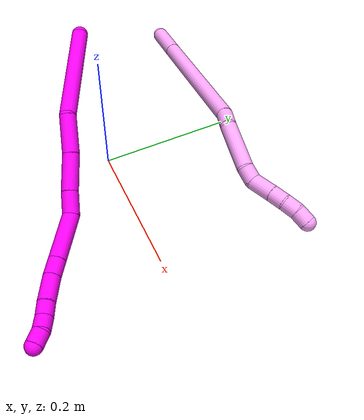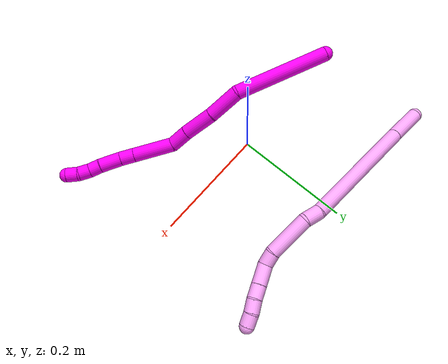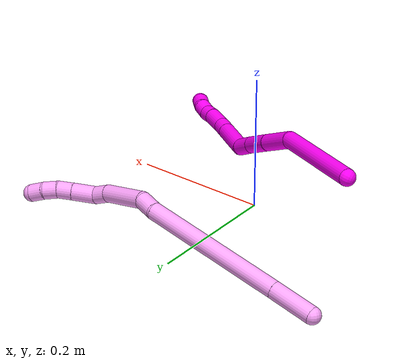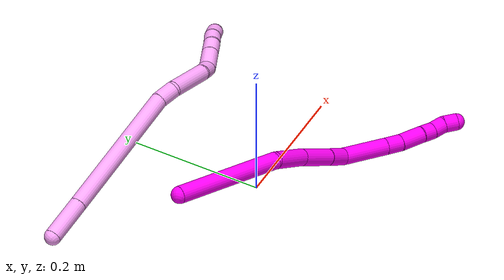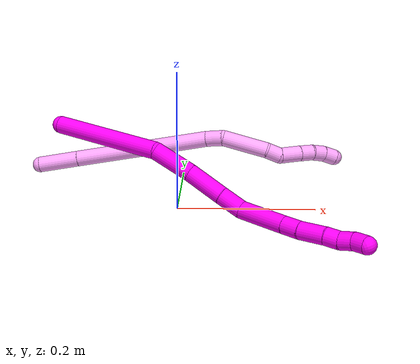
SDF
<sdf version="1.7">
 <world name="default">
  <model name="4">
   <static>0</static>
   <link name="4">
    <collision name="collision-cylinder-e_1_1_4">
     <pose>0.029451 0.000976 -0.012718 -3.06497 1.16208 -3.02498</pose>
     <geometry><cylinder><radius>0.0125</radius><length>0.06419</length></cylinder></geometry>
     <surface>
      <friction><ode><mu>1.16</mu><mu2>1.16</mu2><slip1>0</slip1><slip2>0</slip2></ode></friction>
      <contact><ode><kp>1e+06</kp><kd>1</kd><max_vel>0</max_vel><min_depth>0.001</min_depth></ode></contact>
     </surface>
    </collision>
    <visual name="visual-cylinder-e_1_1_4">
     <pose>0.029451 0.000976 -0.012718 -3.06497 1.16208 -3.02498</pose>
     <geometry><cylinder><radius>0.0125</radius><length>0.06419</length></cylinder></geometry>
     <material><ambient>1 0.65098 0.996078 1</ambient></material>
    </visual>
    <collision name="collision-cylinder-e_2_4_5">
     <pose>0.156813 0.0046 -0.068569 -3.08029 1.15514 -3.04757</pose>
     <geometry><cylinder><radius>0.0125</radius><length>0.214046</length></cylinder></geometry>
     <surface>
      <friction><ode><mu>1.16</mu><mu2>1.16</mu2><slip1>0</slip1><slip2>0</slip2></ode></friction>
      <contact><ode><kp>1e+06</kp><kd>1</kd><max_vel>0</max_vel><min_depth>0.001</min_depth></ode></contact>
     </surface>
    </collision>
    <visual name="visual-cylinder-e_2_4_5">
     <pose>0.156813 0.0046 -0.068569 -3.08029 1.15514 -3.04757</pose>
     <geometry><cylinder><radius>0.0125</radius><length>0.214046</length></cylinder></geometry>
     <material><ambient>1 0.65098 0.996078 1</ambient></material>
    </visual>
    <collision name="collision-cylinder-e_3_5_6">
     <pose>0.268667 0.00706 -0.114153 3.06509 1.39638 3.05045</pose>
     <geometry><cylinder><radius>0.0125</radius><length>0.028316</length></cylinder></geometry>
     <surface>
      <friction><ode><mu>1.16</mu><mu2>1.16</mu2><slip1>0</slip1><slip2>0</slip2></ode></friction>
      <contact><ode><kp>1e+06</kp><kd>1</kd><max_vel>0</max_vel><min_depth>0.001</min_depth></ode></contact>
     </surface>
    </collision>
    <visual name="visual-cylinder-e_3_5_6">
     <pose>0.268667 0.00706 -0.114153 3.06509 1.39638 3.05045</pose>
     <geometry><cylinder><radius>0.0125</radius><length>0.028316</length></cylinder></geometry>
     <material><ambient>1 0.65098 0.996078 1</ambient></material>
    </visual>
    <collision name="collision-cylinder-e_4_6_7">
     <pose>0.313989 -0.006967 -0.127204 2.2245 1.06368 1.74548</pose>
     <geometry><cylinder><radius>0.0125</radius><length>0.071792</length></cylinder></geometry>
     <surface>
      <friction><ode><mu>1.16</mu><mu2>1.16</mu2><slip1>0</slip1><slip2>0</slip2></ode></friction>
      <contact><ode><kp>1e+06</kp><kd>1</kd><max_vel>0</max_vel><min_depth>0.001</min_depth></ode></contact>
     </surface>
    </collision>
    <visual name="visual-cylinder-e_4_6_7">
     <pose>0.313989 -0.006967 -0.127204 2.2245 1.06368 1.74548</pose>
     <geometry><cylinder><radius>0.0125</radius><length>0.071792</length></cylinder></geometry>
     <material><ambient>1 0.65098 0.996078 1</ambient></material>
    </visual>
    <collision name="collision-cylinder-e_5_7_8">
     <pose>0.353565 -0.026991 -0.14302 2.27131 0.792004 1.46495</pose>
     <geometry><cylinder><radius>0.0125</radius><length>0.023035</length></cylinder></geometry>
     <surface>
      <friction><ode><mu>1.16</mu><mu2>1.16</mu2><slip1>0</slip1><slip2>0</slip2></ode></friction>
      <contact><ode><kp>1e+06</kp><kd>1</kd><max_vel>0</max_vel><min_depth>0.001</min_depth></ode></contact>
     </surface>
    </collision>
    <visual name="visual-cylinder-e_5_7_8">
     <pose>0.353565 -0.026991 -0.14302 2.27131 0.792004 1.46495</pose>
     <geometry><cylinder><radius>0.0125</radius><length>0.023035</length></cylinder></geometry>
     <material><ambient>1 0.65098 0.996078 1</ambient></material>
    </visual>
    <collision name="collision-cylinder-e_6_8_9">
     <pose>0.372865 -0.035586 -0.161097 2.95634 0.703597 2.64586</pose>
     <geometry><cylinder><radius>0.0125</radius><length>0.034321</length></cylinder></geometry>
     <surface>
      <friction><ode><mu>1.16</mu><mu2>1.16</mu2><slip1>0</slip1><slip2>0</slip2></ode></friction>
      <contact><ode><kp>1e+06</kp><kd>1</kd><max_vel>0</max_vel><min_depth>0.001</min_depth></ode></contact>
     </surface>
    </collision>
    <visual name="visual-cylinder-e_6_8_9">
     <pose>0.372865 -0.035586 -0.161097 2.95634 0.703597 2.64586</pose>
     <geometry><cylinder><radius>0.0125</radius><length>0.034321</length></cylinder></geometry>
     <material><ambient>1 0.65098 0.996078 1</ambient></material>
    </visual>
    <collision name="collision-cylinder-e_7_9_10">
     <pose>0.391191 -0.039818 -0.182185 2.92371 0.708722 2.56672</pose>
     <geometry><cylinder><radius>0.0125</radius><length>0.022198</length></cylinder></geometry>
     <surface>
      <friction><ode><mu>1.16</mu><mu2>1.16</mu2><slip1>0</slip1><slip2>0</slip2></ode></friction>
      <contact><ode><kp>1e+06</kp><kd>1</kd><max_vel>0</max_vel><min_depth>0.001</min_depth></ode></contact>
     </surface>
    </collision>
    <visual name="visual-cylinder-e_7_9_10">
     <pose>0.391191 -0.039818 -0.182185 2.92371 0.708722 2.56672</pose>
     <geometry><cylinder><radius>0.0125</radius><length>0.022198</length></cylinder></geometry>
     <material><ambient>1 0.65098 0.996078 1</ambient></material>
    </visual>
    <collision name="collision-cylinder-e_8_10_11">
     <pose>0.404243 -0.045254 -0.198515 2.72206 0.581243 1.90435</pose>
     <geometry><cylinder><radius>0.0125</radius><length>0.021232</length></cylinder></geometry>
     <surface>
      <friction><ode><mu>1.16</mu><mu2>1.16</mu2><slip1>0</slip1><slip2>0</slip2></ode></friction>
      <contact><ode><kp>1e+06</kp><kd>1</kd><max_vel>0</max_vel><min_depth>0.001</min_depth></ode></contact>
     </surface>
    </collision>
    <visual name="visual-cylinder-e_8_10_11">
     <pose>0.404243 -0.045254 -0.198515 2.72206 0.581243 1.90435</pose>
     <geometry><cylinder><radius>0.0125</radius><length>0.021232</length></cylinder></geometry>
     <material><ambient>1 0.65098 0.996078 1</ambient></material>
    </visual>
    <collision name="collision-cylinder-e_9_11_2">
     <pose>0.416336 -0.054065 -0.213148 2.46935 0.643874 1.52442</pose>
     <geometry><cylinder><radius>0.0125</radius><length>0.020871</length></cylinder></geometry>
     <surface>
      <friction><ode><mu>1.16</mu><mu2>1.16</mu2><slip1>0</slip1><slip2>0</slip2></ode></friction>
      <contact><ode><kp>1e+06</kp><kd>1</kd><max_vel>0</max_vel><min_depth>0.001</min_depth></ode></contact>
     </surface>
    </collision>
    <visual name="visual-cylinder-e_9_11_2">
     <pose>0.416336 -0.054065 -0.213148 2.46935 0.643874 1.52442</pose>
     <geometry><cylinder><radius>0.0125</radius><length>0.020871</length></cylinder></geometry>
     <material><ambient>1 0.65098 0.996078 1</ambient></material>
    </visual>
    <collision name="collision-sphere-2">
     <pose>0.422601 -0.059262 -0.219678 0 -0 0</pose>
     <geometry><sphere><radius>0.0125</radius></sphere></geometry>
     <surface>
      <friction><ode><mu>1.16</mu><mu2>1.16</mu2><slip1>0</slip1><slip2>0</slip2></ode></friction>
      <contact><ode><kp>1e+06</kp><kd>1</kd><max_vel>0</max_vel><min_depth>0.001</min_depth></ode></contact>
     </surface>
    </collision>
    <visual name="visual-sphere-2">
     <pose>0.422601 -0.059262 -0.219678 0 -0 0</pose>
     <geometry><sphere><radius>0.0125</radius></sphere></geometry>
     <material><ambient>1 0.65098 0.996078 1</ambient></material>
    </visual>
    <collision name="collision-sphere-11">
     <pose>0.410072 -0.048868 -0.206618 0 -0 0</pose>
     <geometry><sphere><radius>0.0125</radius></sphere></geometry>
     <surface>
      <friction><ode><mu>1.16</mu><mu2>1.16</mu2><slip1>0</slip1><slip2>0</slip2></ode></friction>
      <contact><ode><kp>1e+06</kp><kd>1</kd><max_vel>0</max_vel><min_depth>0.001</min_depth></ode></contact>
     </surface>
    </collision>
    <visual name="visual-sphere-11">
     <pose>0.410072 -0.048868 -0.206618 0 -0 0</pose>
     <geometry><sphere><radius>0.0125</radius></sphere></geometry>
     <material><ambient>1 0.65098 0.996078 1</ambient></material>
    </visual>
    <collision name="collision-sphere-10">
     <pose>0.398414 -0.041639 -0.190412 0 -0 0</pose>
     <geometry><sphere><radius>0.0125</radius></sphere></geometry>
     <surface>
      <friction><ode><mu>1.16</mu><mu2>1.16</mu2><slip1>0</slip1><slip2>0</slip2></ode></friction>
      <contact><ode><kp>1e+06</kp><kd>1</kd><max_vel>0</max_vel><min_depth>0.001</min_depth></ode></contact>
     </surface>
    </collision>
    <visual name="visual-sphere-10">
     <pose>0.398414 -0.041639 -0.190412 0 -0 0</pose>
     <geometry><sphere><radius>0.0125</radius></sphere></geometry>
     <material><ambient>1 0.65098 0.996078 1</ambient></material>
    </visual>
    <collision name="collision-sphere-9">
     <pose>0.383967 -0.037997 -0.173958 0 -0 0</pose>
     <geometry><sphere><radius>0.0125</radius></sphere></geometry>
     <surface>
      <friction><ode><mu>1.16</mu><mu2>1.16</mu2><slip1>0</slip1><slip2>0</slip2></ode></friction>
      <contact><ode><kp>1e+06</kp><kd>1</kd><max_vel>0</max_vel><min_depth>0.001</min_depth></ode></contact>
     </surface>
    </collision>
    <visual name="visual-sphere-9">
     <pose>0.383967 -0.037997 -0.173958 0 -0 0</pose>
     <geometry><sphere><radius>0.0125</radius></sphere></geometry>
     <material><ambient>1 0.65098 0.996078 1</ambient></material>
    </visual>
    <collision name="collision-sphere-4">
     <pose>0.058903 0.001953 -0.025436 0 -0 0</pose>
     <geometry><sphere><radius>0.0125</radius></sphere></geometry>
     <surface>
      <friction><ode><mu>1.16</mu><mu2>1.16</mu2><slip1>0</slip1><slip2>0</slip2></ode></friction>
      <contact><ode><kp>1e+06</kp><kd>1</kd><max_vel>0</max_vel><min_depth>0.001</min_depth></ode></contact>
     </surface>
    </collision>
    <visual name="visual-sphere-4">
     <pose>0.058903 0.001953 -0.025436 0 -0 0</pose>
     <geometry><sphere><radius>0.0125</radius></sphere></geometry>
     <material><ambient>1 0.65098 0.996078 1</ambient></material>
    </visual>
    <collision name="collision-sphere-1">
     <geometry><sphere><radius>0.0125</radius></sphere></geometry>
     <surface>
      <friction><ode><mu>1.16</mu><mu2>1.16</mu2><slip1>0</slip1><slip2>0</slip2></ode></friction>
      <contact><ode><kp>1e+06</kp><kd>1</kd><max_vel>0</max_vel><min_depth>0.001</min_depth></ode></contact>
     </surface>
    </collision>
    <visual name="visual-sphere-1">
     <geometry><sphere><radius>0.0125</radius></sphere></geometry>
     <material><ambient>1 0.65098 0.996078 1</ambient></material>
    </visual>
    <collision name="collision-sphere-8">
     <pose>0.361762 -0.033176 -0.148235 0 -0 0</pose>
     <geometry><sphere><radius>0.0125</radius></sphere></geometry>
     <surface>
      <friction><ode><mu>1.16</mu><mu2>1.16</mu2><slip1>0</slip1><slip2>0</slip2></ode></friction>
      <contact><ode><kp>1e+06</kp><kd>1</kd><max_vel>0</max_vel><min_depth>0.001</min_depth></ode></contact>
     </surface>
    </collision>
    <visual name="visual-sphere-8">
     <pose>0.361762 -0.033176 -0.148235 0 -0 0</pose>
     <geometry><sphere><radius>0.0125</radius></sphere></geometry>
     <material><ambient>1 0.65098 0.996078 1</ambient></material>
    </visual>
    <collision name="collision-sphere-5">
     <pose>0.254723 0.007248 -0.111703 0 -0 0</pose>
     <geometry><sphere><radius>0.0125</radius></sphere></geometry>
     <surface>
      <friction><ode><mu>1.16</mu><mu2>1.16</mu2><slip1>0</slip1><slip2>0</slip2></ode></friction>
      <contact><ode><kp>1e+06</kp><kd>1</kd><max_vel>0</max_vel><min_depth>0.001</min_depth></ode></contact>
     </surface>
    </collision>
    <visual name="visual-sphere-5">
     <pose>0.254723 0.007248 -0.111703 0 -0 0</pose>
     <geometry><sphere><radius>0.0125</radius></sphere></geometry>
     <material><ambient>1 0.65098 0.996078 1</ambient></material>
    </visual>
    <collision name="collision-sphere-6">
     <pose>0.28261 0.006872 -0.116602 0 -0 0</pose>
     <geometry><sphere><radius>0.0125</radius></sphere></geometry>
     <surface>
      <friction><ode><mu>1.16</mu><mu2>1.16</mu2><slip1>0</slip1><slip2>0</slip2></ode></friction>
      <contact><ode><kp>1e+06</kp><kd>1</kd><max_vel>0</max_vel><min_depth>0.001</min_depth></ode></contact>
     </surface>
    </collision>
    <visual name="visual-sphere-6">
     <pose>0.28261 0.006872 -0.116602 0 -0 0</pose>
     <geometry><sphere><radius>0.0125</radius></sphere></geometry>
     <material><ambient>1 0.65098 0.996078 1</ambient></material>
    </visual>
    <collision name="collision-sphere-7">
     <pose>0.345367 -0.020806 -0.137806 0 -0 0</pose>
     <geometry><sphere><radius>0.0125</radius></sphere></geometry>
     <surface>
      <friction><ode><mu>1.16</mu><mu2>1.16</mu2><slip1>0</slip1><slip2>0</slip2></ode></friction>
      <contact><ode><kp>1e+06</kp><kd>1</kd><max_vel>0</max_vel><min_depth>0.001</min_depth></ode></contact>
     </surface>
    </collision>
    <visual name="visual-sphere-7">
     <pose>0.345367 -0.020806 -0.137806 0 -0 0</pose>
     <geometry><sphere><radius>0.0125</radius></sphere></geometry>
     <material><ambient>1 0.65098 0.996078 1</ambient></material>
    </visual>
    <inertial>
     <pose>0.225004 -0.008138 -0.098778 0 -0 0</pose>
     <mass>0.5</mass>
     <inertia>
      <ixx>-0.000326</ixx>
      <ixy>0</ixy>
      <ixz>0</ixz>
      <iyy>0.000872</iyy>
      <iyz>0</iyz>
      <izz>-0.00084</izz>
     </inertia>
    </inertial>
   </link>
   <pose>-0.235546 0.19736 0.011874 1.67924 -0.120543 -0.471424</pose>
  </model>
  <model name="10">
   <static>0</static>
   <link name="10">
    <collision name="collision-cylinder-e_1_1_4">
     <pose>-0.012345 -0.059608 0.053266 0.841519 -0.153215 -0.068669</pose>
     <geometry><cylinder><radius>0.0125</radius><length>0.161775</length></cylinder></geometry>
     <surface>
      <friction><ode><mu>1.16</mu><mu2>1.16</mu2><slip1>0</slip1><slip2>0</slip2></ode></friction>
      <contact><ode><kp>1e+06</kp><kd>1</kd><max_vel>0</max_vel><min_depth>0.001</min_depth></ode></contact>
     </surface>
    </collision>
    <visual name="visual-cylinder-e_1_1_4">
     <pose>-0.012345 -0.059608 0.053266 0.841519 -0.153215 -0.068669</pose>
     <geometry><cylinder><radius>0.0125</radius><length>0.161775</length></cylinder></geometry>
     <material><ambient>1 0 0.964706 1</ambient></material>
    </visual>
    <collision name="collision-cylinder-e_2_4_5">
     <pose>-0.018266 -0.142416 0.122831 0.95842 0.222806 0.116122</pose>
     <geometry><cylinder><radius>0.0125</radius><length>0.058144</length></cylinder></geometry>
     <surface>
      <friction><ode><mu>1.16</mu><mu2>1.16</mu2><slip1>0</slip1><slip2>0</slip2></ode></friction>
      <contact><ode><kp>1e+06</kp><kd>1</kd><max_vel>0</max_vel><min_depth>0.001</min_depth></ode></contact>
     </surface>
    </collision>
    <visual name="visual-cylinder-e_2_4_5">
     <pose>-0.018266 -0.142416 0.122831 0.95842 0.222806 0.116122</pose>
     <geometry><cylinder><radius>0.0125</radius><length>0.058144</length></cylinder></geometry>
     <material><ambient>1 0 0.964706 1</ambient></material>
    </visual>
    <collision name="collision-cylinder-e_3_5_6">
     <pose>-0.007425 -0.189 0.152386 1.055 0.162846 0.095007</pose>
     <geometry><cylinder><radius>0.0125</radius><length>0.054481</length></cylinder></geometry>
     <surface>
      <friction><ode><mu>1.16</mu><mu2>1.16</mu2><slip1>0</slip1><slip2>0</slip2></ode></friction>
      <contact><ode><kp>1e+06</kp><kd>1</kd><max_vel>0</max_vel><min_depth>0.001</min_depth></ode></contact>
     </surface>
    </collision>
    <visual name="visual-cylinder-e_3_5_6">
     <pose>-0.007425 -0.189 0.152386 1.055 0.162846 0.095007</pose>
     <geometry><cylinder><radius>0.0125</radius><length>0.054481</length></cylinder></geometry>
     <material><ambient>1 0 0.964706 1</ambient></material>
    </visual>
    <collision name="collision-cylinder-e_4_6_7">
     <pose>0.00089 -0.226428 0.174489 1.00879 0.230718 0.127756</pose>
     <geometry><cylinder><radius>0.0125</radius><length>0.034099</length></cylinder></geometry>
     <surface>
      <friction><ode><mu>1.16</mu><mu2>1.16</mu2><slip1>0</slip1><slip2>0</slip2></ode></friction>
      <contact><ode><kp>1e+06</kp><kd>1</kd><max_vel>0</max_vel><min_depth>0.001</min_depth></ode></contact>
     </surface>
    </collision>
    <visual name="visual-cylinder-e_4_6_7">
     <pose>0.00089 -0.226428 0.174489 1.00879 0.230718 0.127756</pose>
     <geometry><cylinder><radius>0.0125</radius><length>0.034099</length></cylinder></geometry>
     <material><ambient>1 0 0.964706 1</ambient></material>
    </visual>
    <collision name="collision-cylinder-e_5_7_8">
     <pose>-0.004058 -0.268148 0.202719 0.959769 -0.256083 -0.133815</pose>
     <geometry><cylinder><radius>0.0125</radius><length>0.069856</length></cylinder></geometry>
     <surface>
      <friction><ode><mu>1.16</mu><mu2>1.16</mu2><slip1>0</slip1><slip2>0</slip2></ode></friction>
      <contact><ode><kp>1e+06</kp><kd>1</kd><max_vel>0</max_vel><min_depth>0.001</min_depth></ode></contact>
     </surface>
    </collision>
    <visual name="visual-cylinder-e_5_7_8">
     <pose>-0.004058 -0.268148 0.202719 0.959769 -0.256083 -0.133815</pose>
     <geometry><cylinder><radius>0.0125</radius><length>0.069856</length></cylinder></geometry>
     <material><ambient>1 0 0.964706 1</ambient></material>
    </visual>
    <collision name="collision-cylinder-e_6_8_9">
     <pose>-0.01609 -0.305501 0.228982 0.952923 -0.262079 -0.135835</pose>
     <geometry><cylinder><radius>0.0125</radius><length>0.024586</length></cylinder></geometry>
     <surface>
      <friction><ode><mu>1.16</mu><mu2>1.16</mu2><slip1>0</slip1><slip2>0</slip2></ode></friction>
      <contact><ode><kp>1e+06</kp><kd>1</kd><max_vel>0</max_vel><min_depth>0.001</min_depth></ode></contact>
     </surface>
    </collision>
    <visual name="visual-cylinder-e_6_8_9">
     <pose>-0.01609 -0.305501 0.228982 0.952923 -0.262079 -0.135835</pose>
     <geometry><cylinder><radius>0.0125</radius><length>0.024586</length></cylinder></geometry>
     <material><ambient>1 0 0.964706 1</ambient></material>
    </visual>
    <collision name="collision-cylinder-e_7_9_10">
     <pose>-0.023864 -0.328301 0.24797 0.825504 -0.251544 -0.110624</pose>
     <geometry><cylinder><radius>0.0125</radius><length>0.03687</length></cylinder></geometry>
     <surface>
      <friction><ode><mu>1.16</mu><mu2>1.16</mu2><slip1>0</slip1><slip2>0</slip2></ode></friction>
      <contact><ode><kp>1e+06</kp><kd>1</kd><max_vel>0</max_vel><min_depth>0.001</min_depth></ode></contact>
     </surface>
    </collision>
    <visual name="visual-cylinder-e_7_9_10">
     <pose>-0.023864 -0.328301 0.24797 0.825504 -0.251544 -0.110624</pose>
     <geometry><cylinder><radius>0.0125</radius><length>0.03687</length></cylinder></geometry>
     <material><ambient>1 0 0.964706 1</ambient></material>
    </visual>
    <collision name="collision-cylinder-e_8_10_11">
     <pose>-0.02983 -0.34892 0.266609 0.854207 -0.137664 -0.062732</pose>
     <geometry><cylinder><radius>0.0125</radius><length>0.020076</length></cylinder></geometry>
     <surface>
      <friction><ode><mu>1.16</mu><mu2>1.16</mu2><slip1>0</slip1><slip2>0</slip2></ode></friction>
      <contact><ode><kp>1e+06</kp><kd>1</kd><max_vel>0</max_vel><min_depth>0.001</min_depth></ode></contact>
     </surface>
    </collision>
    <visual name="visual-cylinder-e_8_10_11">
     <pose>-0.02983 -0.34892 0.266609 0.854207 -0.137664 -0.062732</pose>
     <geometry><cylinder><radius>0.0125</radius><length>0.020076</length></cylinder></geometry>
     <material><ambient>1 0 0.964706 1</ambient></material>
    </visual>
    <collision name="collision-cylinder-e_9_11_12">
     <pose>-0.034683 -0.362452 0.28039 0.694141 -0.353046 -0.128865</pose>
     <geometry><cylinder><radius>0.0125</radius><length>0.020104</length></cylinder></geometry>
     <surface>
      <friction><ode><mu>1.16</mu><mu2>1.16</mu2><slip1>0</slip1><slip2>0</slip2></ode></friction>
      <contact><ode><kp>1e+06</kp><kd>1</kd><max_vel>0</max_vel><min_depth>0.001</min_depth></ode></contact>
     </surface>
    </collision>
    <visual name="visual-cylinder-e_9_11_12">
     <pose>-0.034683 -0.362452 0.28039 0.694141 -0.353046 -0.128865</pose>
     <geometry><cylinder><radius>0.0125</radius><length>0.020104</length></cylinder></geometry>
     <material><ambient>1 0 0.964706 1</ambient></material>
    </visual>
    <collision name="collision-cylinder-e_10_12_2">
     <pose>-0.042205 -0.376308 0.292385 1.02549 -0.416412 -0.236763</pose>
     <geometry><cylinder><radius>0.0125</radius><length>0.020008</length></cylinder></geometry>
     <surface>
      <friction><ode><mu>1.16</mu><mu2>1.16</mu2><slip1>0</slip1><slip2>0</slip2></ode></friction>
      <contact><ode><kp>1e+06</kp><kd>1</kd><max_vel>0</max_vel><min_depth>0.001</min_depth></ode></contact>
     </surface>
    </collision>
    <visual name="visual-cylinder-e_10_12_2">
     <pose>-0.042205 -0.376308 0.292385 1.02549 -0.416412 -0.236763</pose>
     <geometry><cylinder><radius>0.0125</radius><length>0.020008</length></cylinder></geometry>
     <material><ambient>1 0 0.964706 1</ambient></material>
    </visual>
    <collision name="collision-sphere-2">
     <pose>-0.046251 -0.38413 0.29713 0 -0 0</pose>
     <geometry><sphere><radius>0.0125</radius></sphere></geometry>
     <surface>
      <friction><ode><mu>1.16</mu><mu2>1.16</mu2><slip1>0</slip1><slip2>0</slip2></ode></friction>
      <contact><ode><kp>1e+06</kp><kd>1</kd><max_vel>0</max_vel><min_depth>0.001</min_depth></ode></contact>
     </surface>
    </collision>
    <visual name="visual-sphere-2">
     <pose>-0.046251 -0.38413 0.29713 0 -0 0</pose>
     <geometry><sphere><radius>0.0125</radius></sphere></geometry>
     <material><ambient>1 0 0.964706 1</ambient></material>
    </visual>
    <collision name="collision-sphere-12">
     <pose>-0.038158 -0.368486 0.287639 0 -0 0</pose>
     <geometry><sphere><radius>0.0125</radius></sphere></geometry>
     <surface>
      <friction><ode><mu>1.16</mu><mu2>1.16</mu2><slip1>0</slip1><slip2>0</slip2></ode></friction>
      <contact><ode><kp>1e+06</kp><kd>1</kd><max_vel>0</max_vel><min_depth>0.001</min_depth></ode></contact>
     </surface>
    </collision>
    <visual name="visual-sphere-12">
     <pose>-0.038158 -0.368486 0.287639 0 -0 0</pose>
     <geometry><sphere><radius>0.0125</radius></sphere></geometry>
     <material><ambient>1 0 0.964706 1</ambient></material>
    </visual>
    <collision name="collision-sphere-11">
     <pose>-0.031207 -0.356418 0.27314 0 -0 0</pose>
     <geometry><sphere><radius>0.0125</radius></sphere></geometry>
     <surface>
      <friction><ode><mu>1.16</mu><mu2>1.16</mu2><slip1>0</slip1><slip2>0</slip2></ode></friction>
      <contact><ode><kp>1e+06</kp><kd>1</kd><max_vel>0</max_vel><min_depth>0.001</min_depth></ode></contact>
     </surface>
    </collision>
    <visual name="visual-sphere-11">
     <pose>-0.031207 -0.356418 0.27314 0 -0 0</pose>
     <geometry><sphere><radius>0.0125</radius></sphere></geometry>
     <material><ambient>1 0 0.964706 1</ambient></material>
    </visual>
    <collision name="collision-sphere-10">
     <pose>-0.028452 -0.341422 0.260079 0 -0 0</pose>
     <geometry><sphere><radius>0.0125</radius></sphere></geometry>
     <surface>
      <friction><ode><mu>1.16</mu><mu2>1.16</mu2><slip1>0</slip1><slip2>0</slip2></ode></friction>
      <contact><ode><kp>1e+06</kp><kd>1</kd><max_vel>0</max_vel><min_depth>0.001</min_depth></ode></contact>
     </surface>
    </collision>
    <visual name="visual-sphere-10">
     <pose>-0.028452 -0.341422 0.260079 0 -0 0</pose>
     <geometry><sphere><radius>0.0125</radius></sphere></geometry>
     <material><ambient>1 0 0.964706 1</ambient></material>
    </visual>
    <collision name="collision-sphere-9">
     <pose>-0.019275 -0.31518 0.235861 0 -0 0</pose>
     <geometry><sphere><radius>0.0125</radius></sphere></geometry>
     <surface>
      <friction><ode><mu>1.16</mu><mu2>1.16</mu2><slip1>0</slip1><slip2>0</slip2></ode></friction>
      <contact><ode><kp>1e+06</kp><kd>1</kd><max_vel>0</max_vel><min_depth>0.001</min_depth></ode></contact>
     </surface>
    </collision>
    <visual name="visual-sphere-9">
     <pose>-0.019275 -0.31518 0.235861 0 -0 0</pose>
     <geometry><sphere><radius>0.0125</radius></sphere></geometry>
     <material><ambient>1 0 0.964706 1</ambient></material>
    </visual>
    <collision name="collision-sphere-4">
     <pose>-0.024689 -0.119215 0.106533 0 -0 0</pose>
     <geometry><sphere><radius>0.0125</radius></sphere></geometry>
     <surface>
      <friction><ode><mu>1.16</mu><mu2>1.16</mu2><slip1>0</slip1><slip2>0</slip2></ode></friction>
      <contact><ode><kp>1e+06</kp><kd>1</kd><max_vel>0</max_vel><min_depth>0.001</min_depth></ode></contact>
     </surface>
    </collision>
    <visual name="visual-sphere-4">
     <pose>-0.024689 -0.119215 0.106533 0 -0 0</pose>
     <geometry><sphere><radius>0.0125</radius></sphere></geometry>
     <material><ambient>1 0 0.964706 1</ambient></material>
    </visual>
    <collision name="collision-sphere-1">
     <geometry><sphere><radius>0.0125</radius></sphere></geometry>
     <surface>
      <friction><ode><mu>1.16</mu><mu2>1.16</mu2><slip1>0</slip1><slip2>0</slip2></ode></friction>
      <contact><ode><kp>1e+06</kp><kd>1</kd><max_vel>0</max_vel><min_depth>0.001</min_depth></ode></contact>
     </surface>
    </collision>
    <visual name="visual-sphere-1">
     <geometry><sphere><radius>0.0125</radius></sphere></geometry>
     <material><ambient>1 0 0.964706 1</ambient></material>
    </visual>
    <collision name="collision-sphere-8">
     <pose>-0.012905 -0.295823 0.222104 0 -0 0</pose>
     <geometry><sphere><radius>0.0125</radius></sphere></geometry>
     <surface>
      <friction><ode><mu>1.16</mu><mu2>1.16</mu2><slip1>0</slip1><slip2>0</slip2></ode></friction>
      <contact><ode><kp>1e+06</kp><kd>1</kd><max_vel>0</max_vel><min_depth>0.001</min_depth></ode></contact>
     </surface>
    </collision>
    <visual name="visual-sphere-8">
     <pose>-0.012905 -0.295823 0.222104 0 -0 0</pose>
     <geometry><sphere><radius>0.0125</radius></sphere></geometry>
     <material><ambient>1 0 0.964706 1</ambient></material>
    </visual>
    <collision name="collision-sphere-5">
     <pose>-0.011842 -0.165617 0.139128 0 -0 0</pose>
     <geometry><sphere><radius>0.0125</radius></sphere></geometry>
     <surface>
      <friction><ode><mu>1.16</mu><mu2>1.16</mu2><slip1>0</slip1><slip2>0</slip2></ode></friction>
      <contact><ode><kp>1e+06</kp><kd>1</kd><max_vel>0</max_vel><min_depth>0.001</min_depth></ode></contact>
     </surface>
    </collision>
    <visual name="visual-sphere-5">
     <pose>-0.011842 -0.165617 0.139128 0 -0 0</pose>
     <geometry><sphere><radius>0.0125</radius></sphere></geometry>
     <material><ambient>1 0 0.964706 1</ambient></material>
    </visual>
    <collision name="collision-sphere-6">
     <pose>-0.003009 -0.212383 0.165645 0 -0 0</pose>
     <geometry><sphere><radius>0.0125</radius></sphere></geometry>
     <surface>
      <friction><ode><mu>1.16</mu><mu2>1.16</mu2><slip1>0</slip1><slip2>0</slip2></ode></friction>
      <contact><ode><kp>1e+06</kp><kd>1</kd><max_vel>0</max_vel><min_depth>0.001</min_depth></ode></contact>
     </surface>
    </collision>
    <visual name="visual-sphere-6">
     <pose>-0.003009 -0.212383 0.165645 0 -0 0</pose>
     <geometry><sphere><radius>0.0125</radius></sphere></geometry>
     <material><ambient>1 0 0.964706 1</ambient></material>
    </visual>
    <collision name="collision-sphere-7">
     <pose>0.004789 -0.240473 0.183334 0 -0 0</pose>
     <geometry><sphere><radius>0.0125</radius></sphere></geometry>
     <surface>
      <friction><ode><mu>1.16</mu><mu2>1.16</mu2><slip1>0</slip1><slip2>0</slip2></ode></friction>
      <contact><ode><kp>1e+06</kp><kd>1</kd><max_vel>0</max_vel><min_depth>0.001</min_depth></ode></contact>
     </surface>
    </collision>
    <visual name="visual-sphere-7">
     <pose>0.004789 -0.240473 0.183334 0 -0 0</pose>
     <geometry><sphere><radius>0.0125</radius></sphere></geometry>
     <material><ambient>1 0 0.964706 1</ambient></material>
    </visual>
    <inertial>
     <pose>-0.014266 -0.19222 0.151569 0 -0 0</pose>
     <mass>0.5</mass>
     <inertia>
      <ixx>0.000404</ixx>
      <ixy>0</ixy>
      <ixz>0</ixz>
      <iyy>0.000234</iyy>
      <iyz>0</iyz>
      <izz>0.000412</izz>
     </inertia>
    </inertial>
   </link>
   <pose>-0.1707 0.026641 0.116892 1.09371 0.836933 1.47912</pose>
  </model>
 </world>
</sdf>
